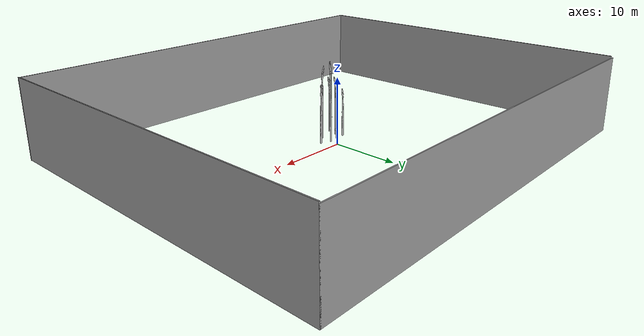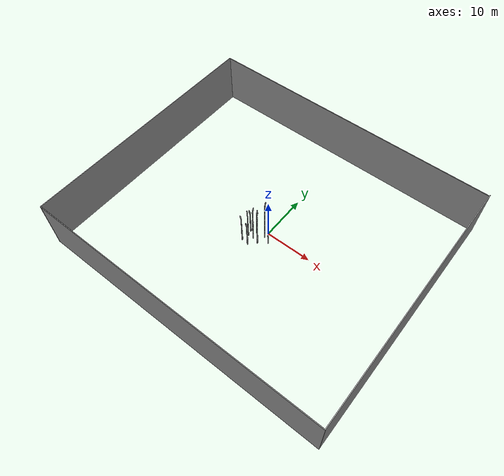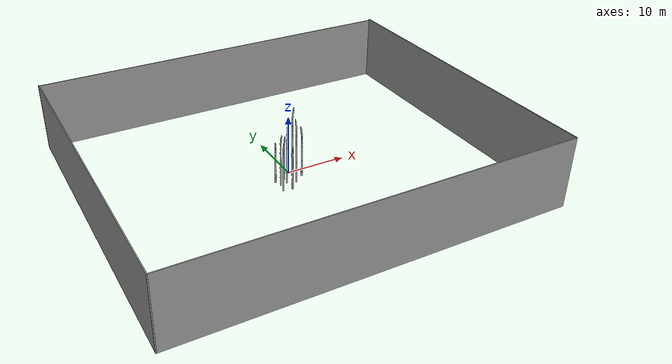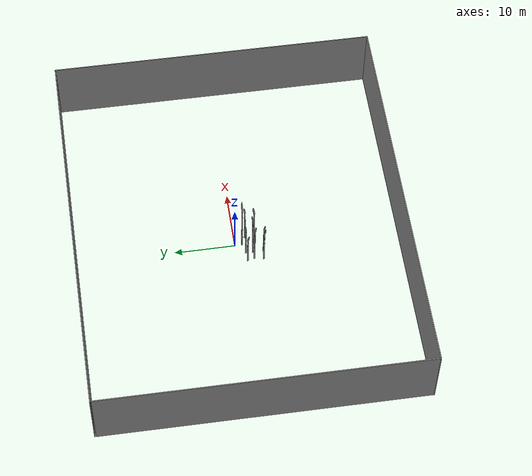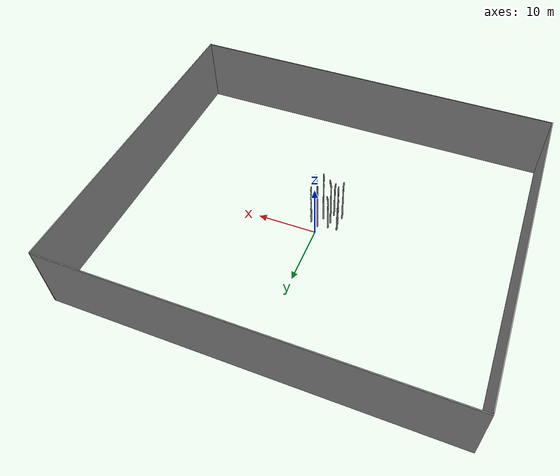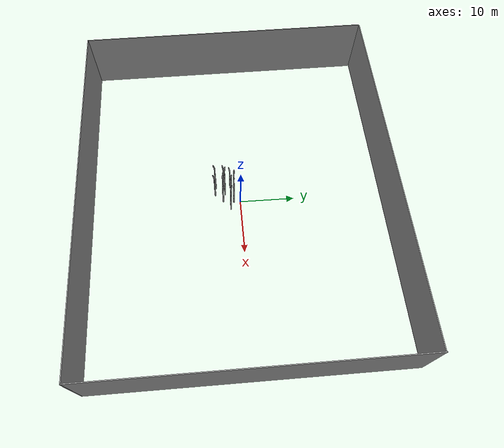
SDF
<sdf version="1.6">
 <world name="default">
  <model name="asparagus_22">
   <pose>-3.15192 -4.45805 0 0 -0 -1.46436</pose>
   <static>1</static>
   <link name="asparagus_22">
    <visual name="visual">
     <geometry>
      <mesh><uri>model://Asparagus/meshes/asparagus.obj</uri><scale>0.3 0.3 0.415043</scale></mesh>
     </geometry>
    </visual>
    <collision name="collision">
     <geometry>
      <mesh><uri>model://Asparagus/meshes/asparagus.obj</uri><scale>0.3 0.3 0.415043</scale></mesh>
     </geometry>
    </collision>
   </link>
  </model>
  <model name="asparagus_25">
   <pose>-2.8218 -2.93972 0 0 -0 -1.17502</pose>
   <static>1</static>
   <link name="asparagus_25">
    <visual name="visual">
     <geometry>
      <mesh><uri>model://Asparagus/meshes/asparagus.obj</uri><scale>0.3 0.3 0.434295</scale></mesh>
     </geometry>
    </visual>
    <collision name="collision">
     <geometry>
      <mesh><uri>model://Asparagus/meshes/asparagus.obj</uri><scale>0.3 0.3 0.434295</scale></mesh>
     </geometry>
    </collision>
   </link>
  </model>
  <model name="asparagus_28">
   <pose>-3.18675 -1.78446 0 0 -0 -1.98127</pose>
   <static>1</static>
   <link name="asparagus_28">
    <visual name="visual">
     <geometry>
      <mesh><uri>model://Asparagus/meshes/asparagus.obj</uri><scale>0.3 0.3 0.353589</scale></mesh>
     </geometry>
    </visual>
    <collision name="collision">
     <geometry>
      <mesh><uri>model://Asparagus/meshes/asparagus.obj</uri><scale>0.3 0.3 0.353589</scale></mesh>
     </geometry>
    </collision>
   </link>
  </model>
  <model name="asparagus_82">
   <pose>-1.69288 -4.63874 0 0 -0 -1.8519</pose>
   <static>1</static>
   <link name="asparagus_82">
    <visual name="visual">
     <geometry>
      <mesh><uri>model://Asparagus/meshes/asparagus.obj</uri><scale>0.3 0.3 0.369236</scale></mesh>
     </geometry>
    </visual>
    <collision name="collision">
     <geometry>
      <mesh><uri>model://Asparagus/meshes/asparagus.obj</uri><scale>0.3 0.3 0.369236</scale></mesh>
     </geometry>
    </collision>
   </link>
  </model>
  <model name="asparagus_85">
   <pose>-1.61496 -2.70386 0 0 -0 0.584793</pose>
   <static>1</static>
   <link name="asparagus_85">
    <visual name="visual">
     <geometry>
      <mesh><uri>model://Asparagus/meshes/asparagus.obj</uri><scale>0.3 0.3 0.503766</scale></mesh>
     </geometry>
    </visual>
    <collision name="collision">
     <geometry>
      <mesh><uri>model://Asparagus/meshes/asparagus.obj</uri><scale>0.3 0.3 0.503766</scale></mesh>
     </geometry>
    </collision>
   </link>
  </model>
  <model name="asparagus_88">
   <pose>-1.53974 -1.58733 0 0 -0 0.44727</pose>
   <static>1</static>
   <link name="asparagus_88">
    <visual name="visual">
     <geometry>
      <mesh><uri>model://Asparagus/meshes/asparagus.obj</uri><scale>0.3 0.3 0.3741</scale></mesh>
     </geometry>
    </visual>
    <collision name="collision">
     <geometry>
      <mesh><uri>model://Asparagus/meshes/asparagus.obj</uri><scale>0.3 0.3 0.3741</scale></mesh>
     </geometry>
    </collision>
   </link>
  </model>
  <model name="asparagus_145">
   <pose>-0.276058 -3.08606 0 0 -0 1.87773</pose>
   <static>1</static>
   <link name="asparagus_145">
    <visual name="visual">
     <geometry>
      <mesh><uri>model://Asparagus/meshes/asparagus.obj</uri><scale>0.3 0.3 0.533731</scale></mesh>
     </geometry>
    </visual>
    <collision name="collision">
     <geometry>
      <mesh><uri>model://Asparagus/meshes/asparagus.obj</uri><scale>0.3 0.3 0.533731</scale></mesh>
     </geometry>
    </collision>
   </link>
  </model>
  <model name="asparagus_148">
   <pose>0.126489 -1.20452 0 0 -0 0.176811</pose>
   <static>1</static>
   <link name="asparagus_148">
    <visual name="visual">
     <geometry>
      <mesh><uri>model://Asparagus/meshes/asparagus.obj</uri><scale>0.3 0.3 0.588484</scale></mesh>
     </geometry>
    </visual>
    <collision name="collision">
     <geometry>
      <mesh><uri>model://Asparagus/meshes/asparagus.obj</uri><scale>0.3 0.3 0.588484</scale></mesh>
     </geometry>
    </collision>
   </link>
  </model>
  <model name="asparagus_208">
   <pose>1.36377 -1.77975 0 0 -0 2.14912</pose>
   <static>1</static>
   <link name="asparagus_208">
    <visual name="visual">
     <geometry>
      <mesh><uri>model://Asparagus/meshes/asparagus.obj</uri><scale>0.3 0.3 0.42812</scale></mesh>
     </geometry>
    </visual>
    <collision name="collision">
     <geometry>
      <mesh><uri>model://Asparagus/meshes/asparagus.obj</uri><scale>0.3 0.3 0.42812</scale></mesh>
     </geometry>
    </collision>
   </link>
  </model>
  <model name="wall">
   <link name="Wall_10">
    <pose>0 -26.8 4.46096 0 -0 3.14159</pose>
    <inertial>
     <inertia><ixx>0</ixx><ixy>0</ixy><ixz>0</ixz><iyy>0</iyy><iyz>0</iyz><izz>0</izz></inertia>
     <mass>0</mass>
    </inertial>
    <visual name="Wall_10_Visual">
     <pose>0 0 1.25 0 -0 0</pose>
     <geometry><box><size>63.75 0.15 11.7034</size></box></geometry>
     <material>
      <script><uri>file://media/materials/scripts/gazebo.material</uri><name>Gazebo/Grey</name></script>
      <ambient>1 1 1 1</ambient>
      <shader type="pixel"/>
     </material>
     <meta><layer>0</layer></meta>
    </visual>
    <collision name="Wall_10_Collision">
     <pose>0 0 1.25 0 -0 0</pose>
     <geometry><box><size>63.75 0.15 11.7034</size></box></geometry>
     <surface>
      <friction>
       <ode><mu>1</mu><mu2>1</mu2><fdir1>0 0 0</fdir1><slip1>0</slip1><slip2>0</slip2></ode>
       <torsional>
        <coefficient>1</coefficient>
        <patch_radius>0</patch_radius>
        <surface_radius>0</surface_radius>
        <use_patch_radius>1</use_patch_radius>
        <ode><slip>0</slip></ode>
       </torsional>
      </friction>
      <bounce><restitution_coefficient>0</restitution_coefficient><threshold>1e+06</threshold></bounce>
      <contact>
       <collide_without_contact>0</collide_without_contact>
       <collide_without_contact_bitmask>1</collide_without_contact_bitmask>
       <collide_bitmask>1</collide_bitmask>
       <ode>
        <soft_cfm>0</soft_cfm>
        <soft_erp>0.2</soft_erp>
        <kp>1e+13</kp>
        <kd>1</kd>
        <max_vel>0.01</max_vel>
        <min_depth>0</min_depth>
       </ode>
       <bullet>
        <split_impulse>1</split_impulse>
        <split_impulse_penetration_threshold>-0.01</split_impulse_penetration_threshold>
        <soft_cfm>0</soft_cfm>
        <soft_erp>0.2</soft_erp>
        <kp>1e+13</kp>
        <kd>1</kd>
       </bullet>
      </contact>
     </surface>
    </collision>
   </link>
   <link name="Wall_11">
    <pose>-31.8 -0.125 4.51355 0 -0 1.5708</pose>
    <inertial>
     <inertia><ixx>0</ixx><ixy>0</ixy><ixz>0</ixz><iyy>0</iyy><iyz>0</iyz><izz>0</izz></inertia>
     <mass>0</mass>
    </inertial>
    <visual name="Wall_11_Visual">
     <pose>0 0 1.25 0 -0 0</pose>
     <geometry><box><size>53.5 0.15 11.672</size></box></geometry>
     <material>
      <script><uri>file://media/materials/scripts/gazebo.material</uri><name>Gazebo/Grey</name></script>
      <ambient>1 1 1 1</ambient>
      <shader type="pixel"/>
     </material>
     <meta><layer>0</layer></meta>
    </visual>
    <collision name="Wall_11_Collision">
     <pose>0 0 1.25 0 -0 0</pose>
     <geometry><box><size>53.5 0.15 11.672</size></box></geometry>
     <surface>
      <friction>
       <ode><mu>1</mu><mu2>1</mu2><fdir1>0 0 0</fdir1><slip1>0</slip1><slip2>0</slip2></ode>
       <torsional>
        <coefficient>1</coefficient>
        <patch_radius>0</patch_radius>
        <surface_radius>0</surface_radius>
        <use_patch_radius>1</use_patch_radius>
        <ode><slip>0</slip></ode>
       </torsional>
      </friction>
      <bounce><restitution_coefficient>0</restitution_coefficient><threshold>1e+06</threshold></bounce>
      <contact>
       <collide_without_contact>0</collide_without_contact>
       <collide_without_contact_bitmask>1</collide_without_contact_bitmask>
       <collide_bitmask>1</collide_bitmask>
       <ode>
        <soft_cfm>0</soft_cfm>
        <soft_erp>0.2</soft_erp>
        <kp>1e+13</kp>
        <kd>1</kd>
        <max_vel>0.01</max_vel>
        <min_depth>0</min_depth>
       </ode>
       <bullet>
        <split_impulse>1</split_impulse>
        <split_impulse_penetration_threshold>-0.01</split_impulse_penetration_threshold>
        <soft_cfm>0</soft_cfm>
        <soft_erp>0.2</soft_erp>
        <kp>1e+13</kp>
        <kd>1</kd>
       </bullet>
      </contact>
     </surface>
    </collision>
   </link>
   <link name="Wall_8">
    <pose>0 26.8 4.41729 0 -0 0</pose>
    <inertial>
     <inertia><ixx>0</ixx><ixy>0</ixy><ixz>0</ixz><iyy>0</iyy><iyz>0</iyz><izz>0</izz></inertia>
     <mass>0</mass>
    </inertial>
    <visual name="Wall_8_Visual">
     <pose>0 0 1.25 0 -0 0</pose>
     <geometry><box><size>63.75 0.15 11.4497</size></box></geometry>
     <material>
      <script><uri>file://media/materials/scripts/gazebo.material</uri><name>Gazebo/Grey</name></script>
      <ambient>1 1 1 1</ambient>
      <shader type="pixel"/>
     </material>
     <meta><layer>0</layer></meta>
    </visual>
    <collision name="Wall_8_Collision">
     <pose>0 0 1.25 0 -0 0</pose>
     <geometry><box><size>63.75 0.15 11.4497</size></box></geometry>
     <surface>
      <friction>
       <ode><mu>1</mu><mu2>1</mu2><fdir1>0 0 0</fdir1><slip1>0</slip1><slip2>0</slip2></ode>
       <torsional>
        <coefficient>1</coefficient>
        <patch_radius>0</patch_radius>
        <surface_radius>0</surface_radius>
        <use_patch_radius>1</use_patch_radius>
        <ode><slip>0</slip></ode>
       </torsional>
      </friction>
      <bounce><restitution_coefficient>0</restitution_coefficient><threshold>1e+06</threshold></bounce>
      <contact>
       <collide_without_contact>0</collide_without_contact>
       <collide_without_contact_bitmask>1</collide_without_contact_bitmask>
       <collide_bitmask>1</collide_bitmask>
       <ode>
        <soft_cfm>0</soft_cfm>
        <soft_erp>0.2</soft_erp>
        <kp>1e+13</kp>
        <kd>1</kd>
        <max_vel>0.01</max_vel>
        <min_depth>0</min_depth>
       </ode>
       <bullet>
        <split_impulse>1</split_impulse>
        <split_impulse_penetration_threshold>-0.01</split_impulse_penetration_threshold>
        <soft_cfm>0</soft_cfm>
        <soft_erp>0.2</soft_erp>
        <kp>1e+13</kp>
        <kd>1</kd>
       </bullet>
      </contact>
     </surface>
    </collision>
   </link>
   <link name="Wall_9">
    <pose>31.8 0 4.53099 0 0 -1.5708</pose>
    <inertial>
     <inertia><ixx>0</ixx><ixy>0</ixy><ixz>0</ixz><iyy>0</iyy><iyz>0</iyz><izz>0</izz></inertia>
     <mass>0</mass>
    </inertial>
    <visual name="Wall_9_Visual">
     <pose>0 0 1.25 0 -0 0</pose>
     <geometry><box><size>53.75 0.15 11.672</size></box></geometry>
     <material>
      <script><uri>file://media/materials/scripts/gazebo.material</uri><name>Gazebo/Grey</name></script>
      <ambient>1 1 1 1</ambient>
      <shader type="pixel"/>
     </material>
     <meta><layer>0</layer></meta>
    </visual>
    <collision name="Wall_9_Collision">
     <pose>0 0 1.25 0 -0 0</pose>
     <geometry><box><size>53.75 0.15 11.672</size></box></geometry>
     <surface>
      <friction>
       <ode><mu>1</mu><mu2>1</mu2><fdir1>0 0 0</fdir1><slip1>0</slip1><slip2>0</slip2></ode>
       <torsional>
        <coefficient>1</coefficient>
        <patch_radius>0</patch_radius>
        <surface_radius>0</surface_radius>
        <use_patch_radius>1</use_patch_radius>
        <ode><slip>0</slip></ode>
       </torsional>
      </friction>
      <bounce><restitution_coefficient>0</restitution_coefficient><threshold>1e+06</threshold></bounce>
      <contact>
       <collide_without_contact>0</collide_without_contact>
       <collide_without_contact_bitmask>1</collide_without_contact_bitmask>
       <collide_bitmask>1</collide_bitmask>
       <ode>
        <soft_cfm>0</soft_cfm>
        <soft_erp>0.2</soft_erp>
        <kp>1e+13</kp>
        <kd>1</kd>
        <max_vel>0.01</max_vel>
        <min_depth>0</min_depth>
       </ode>
       <bullet>
        <split_impulse>1</split_impulse>
        <split_impulse_penetration_threshold>-0.01</split_impulse_penetration_threshold>
        <soft_cfm>0</soft_cfm>
        <soft_erp>0.2</soft_erp>
        <kp>1e+13</kp>
        <kd>1</kd>
       </bullet>
      </contact>
     </surface>
    </collision>
   </link>
   <static>1</static>
   <pose>0.039712 -0.497969 0 0 -0 0</pose>
  </model>
 </world>
</sdf>
